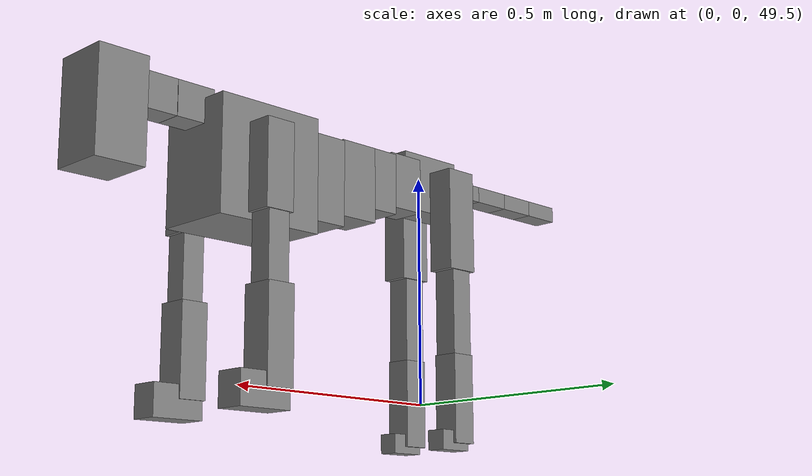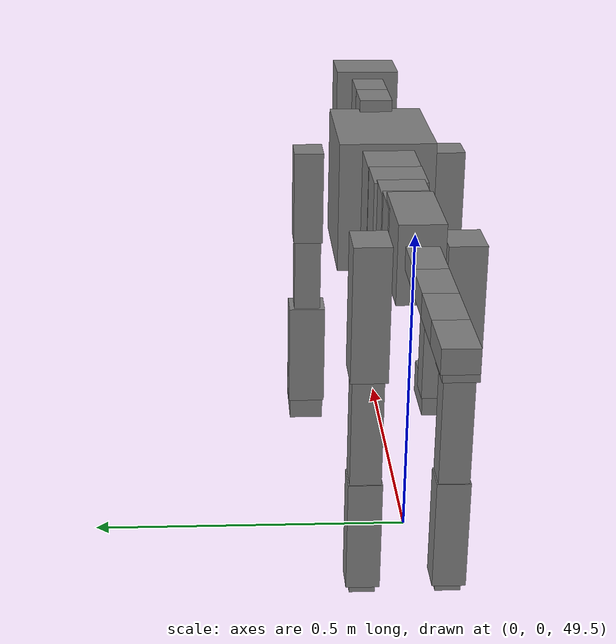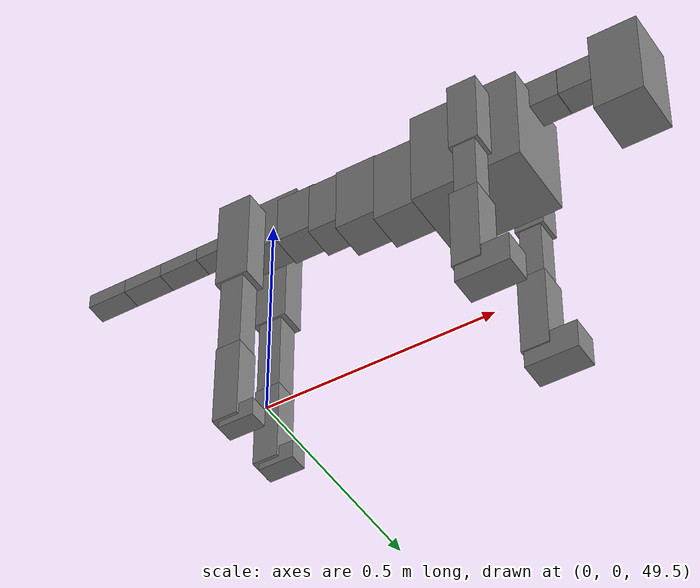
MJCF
<mujoco model="dog">

    <default>
        <joint armature="0.02" stiffness="1" damping="0.2" limited="true"/>
        <geom condim="3" friction="1 0.05 0.05" margin="0.01"/>
        <motor ctrllimited="true" ctrlrange="-1.0 1.0" forcelimited="true" gear="50"/>
    </default>

    <compiler inertiafromgeom="true" angle="radian"/>

    <option timestep="0.016" iterations="50" tolerance="1e-10" solver="Newton" jacobian="dense" cone="pyramidal"/>

    <size nconmax="20000" njmax="60000" nstack="5000000"/>
    <visual>
        <map force="0.1" zfar="30"/>
        <rgba haze="0.15 0.25 0.35 1"/>
        <quality shadowsize="2048"/>
        <global offwidth="800" offheight="800"/>
    </visual>

    <asset>
        <texture type="skybox" builtin="gradient" rgb1="0.3 0.5 0.7" rgb2="0 0 0" width="512" height="512"/>
        <texture name="texplane" type="2d" builtin="checker" rgb1=".2 .3 .4" rgb2=".1 0.15 0.2" width="512" height="512"
                 mark="cross" markrgb=".8 .8 .8"/>
        <texture name="texgeom" type="cube" builtin="flat" mark="cross" width="127" height="1278" rgb1="0.8 0.6 0.4"
                 rgb2="0.8 0.6 0.4" markrgb="1 1 1" random="0.01"/>

        <material name="matplane" reflectance="0.3" texture="texplane" texrepeat="1 1" texuniform="true"/>
        <material name="matgeom" texture="texgeom" texuniform="true" rgba="0.8 0.6 .4 1"/>
    </asset>

    <worldbody>
        <geom name="floor" pos="0 0 0" size="0 0 .25" type="plane" material="matplane" condim="3"/>

        <light directional="false" diffuse=".2 .2 .2" specular="0 0 0" pos="0 0 5" dir="0 0 -1" castshadow="false"/>
        <light mode="targetbodycom" target="torso" directional="false" diffuse=".8 .8 .8" specular="0.3 0.3 0.3"
               pos="0 0 4.0" dir="0 0 -1"/>

        <body name="root" pos="0 0 50">
            <freejoint name="root_1"/>
            <geom type="box" pos="0 0 -0.02" size="0.0774  0.0358  0.063" density="2030"/>

            <body name="spine1" pos="0.054 0 0">
                <joint name="spine1_y" axis="0 1 0" range="0 0.7" limited="true"/>
                <geom type="box" pos="0.02375 0 -0.03" size="0.04375  0.0375  0.05985" density="2030"/>

                <body name="spine2" pos="0.0612 0 0">
                    <joint name="spine2_y" axis="0 1 0" range="-0.15 0.15" limited="true"/>
                    <geom type="box" pos="0.03555  0  -0.04" size="0.04055  0.039  0.06615" density="2030"/>

                    <body name="spine3" pos="0.0730 0 0">
                        <joint name="spine3_y" axis="0 1 0" range="-0.15 0.15" limited="true"/>
                        <geom type="box" pos="0.03555  0  -0.057" size="0.04555  0.0445  0.081" density="2030"/>

                        <body name="spine4" pos="0.0780 0 0">
                            <joint name="spine4_y" axis="0 1 0" range="-0.15 0.15" limited="true"/>
                            <geom type="box" pos="0.05265  0  -0.07" size="0.05265  0.045  0.09135" density="2030"/>

                            <body name="torso" pos="0.1082 0 0">
                                <joint name="torso_y" axis="0 1 0" range="-0.15 0.15" limited="true"/>
                                <geom type="box" pos="0.11925  0  -0.085" size="0.11925  0.085  0.11745"
                                      density="2030"/>

                                <body name="neck1" pos="0.2160  0   0.0180">
                                    <joint name="neck1_y" axis="0 1 0" range="-1.2  -1" limited="true"/>
                                    <geom type="box" pos="0.0423  0  0" size="0.0423  0.03  0.036" density="2325"/>

                                    <body name="neck2" pos="0.0853  0  0">
                                        <joint name="neck2_y" axis="0 1 0" range="0.1  0" limited="true"/>
                                        <geom type="box" pos="0.0423  0  0" size="0.0423  0.03  0.036" density="2325"/>

                                        <body name="head" pos="0.0853  0  0">
                                            <joint name="head_y" axis="0 1 0" range="-0.3  -0.2" limited="true"/>
                                            <geom type="box" pos="0.0531  0  -0.055" size="0.0531  0.06  0.1044"
                                                  density="4030"/>

                                        </body>
                                    </body>
                                </body>

                                <body name="front_shoulder" pos="0.156  0   -0.0480">
                                    <joint name="front_shoulder_y" axis="0 1 0" range="-1 1.5" limited="true"/>
                                    <geom type="box" pos="0 0.13 -0.0601" size="0.0317  0.0271  0.0868" density="1158"/>
                                    <geom type="box" pos="0 -0.13 -0.0601" size="0.0317  0.0271  0.0868"
                                          density="1158"/>

                                    <body name="front_elbow" pos="0  0  -0.1202">
                                        <joint name="front_elbow_y" axis="0 1 0" range="-2 0" limited="true"/>
                                        <geom type="box" pos="0 0.13 -0.0876" size="0.0241  0.0246  0.0876"
                                              density="1081"/>
                                        <geom type="box" pos="0 -0.13 -0.0876" size="0.0241  0.0246  0.0876"
                                              density="1081"/>

                                        <body name="front_wrist" pos="0  0  -0.1751">
                                            <joint name="front_wrist_y" axis="0 1 0" range="-0.2 0" limited="true"/>
                                            <geom type="box" pos="0 0.13 -0.0830" size="0.0303  0.0337  0.0962"
                                                  density="1664"/>
                                            <geom type="box" pos="0 -0.13 -0.0830" size="0.0303  0.0337  0.0962"
                                                  density="1664"/>

                                            <body name="front_finger_end" pos="0  0  -0.1661">
                                                <joint name="front_finger_y" axis="0 1 0" range="-0.4 1"
                                                       limited="true"/>
                                                <geom type="box" pos="0.0312  0.13  -0.0184"
                                                      size="0.0571  0.0312  0.0334" density="1515"/>
                                                <geom type="box" pos="0.0312  -0.13  -0.0184"
                                                      size="0.0571  0.0312  0.0334" density="1515"/>

                                            </body>

                                        </body>
                                    </body>
                                </body>

                            </body>
                        </body>
                    </body>
                </body>
            </body>

            <body name="back_hip" pos="-0.03 0 -0.018">
                <joint name="back_hip_y" axis="0 1 0" range="-1.5 0.3" limited="true"/>
                <geom type="box" pos="0 0.07 -0.0872" size="0.0372  0.0292  0.1100" density="1154"/>
                <geom type="box" pos="0 -0.07 -0.0872" size="0.0372  0.0292  0.1100" density="1154"/>

                <body name="back_knee" pos="0  0  -0.1744">
                    <joint name="back_knee_y" axis="0 1 0" range="0 2.8" limited="true"/>
                    <geom type="box" pos="0 0.07 -0.1079" size="0.0256  0.0252  0.1235" density="1227"/>
                    <geom type="box" pos="0 -0.07 -0.1079" size="0.0256  0.0252  0.1235" density="1227"/>

                    <body name="back_ankle" pos="0  0  -0.2159">
                        <joint name="back_ankle_y" axis="0 1 0" range="-2.2 0" limited="true"/>
                        <geom type="box" pos="0 0.07 -0.0825" size="0.0274  0.0274  0.0938" density="1284"/>
                        <geom type="box" pos="0 -0.07 -0.0825" size="0.0274  0.0274  0.0938" density="1284"/>

                        <body name="back_toe_end" pos="0  0  -0.1650">
                            <joint name="back_toe_y" axis="0 1 0" range="-0.4 1" limited="true"/>
                            <geom type="box" pos="0.0209  0.07  -0.0057" size="0.0383  0.0209  0.0207" density="1515"/>
                            <geom type="box" pos="0.0209  -0.07  -0.0057" size="0.0383  0.0209  0.0207" density="1515"/>

                        </body>
                    </body>
                </body>
            </body>

            <body name="tail1" pos="-0.074 0 -0.006">
                <joint name="tail1_y" axis="0 1 0" range="-0.2 0.2" limited="true"/>
                <geom type="box" pos="-0.0536  0  0" size="0.045  0.025  0.0175" density="1587"/>

                <body name="tail2" pos="-0.09 0 0">
                    <joint name="tail2_y" axis="0 1 0" range="-0.2 0.2" limited="true"/>
                    <geom type="box" pos="-0.0536  0  0" size="0.045  0.025  0.0175" density="1587"/>

                    <body name="tail3" pos="-0.09 0 0">
                        <joint name="tail3_y" axis="0 1 0" range="-0.2 0.2" limited="true"/>
                        <geom type="box" pos="-0.0536  0  0" size="0.045  0.025  0.0175" density="1587"/>

                        <body name="tail4" pos="-0.09 0 0">
                            <joint name="tail4_y" axis="0 1 0" range="-0.2 0.2" limited="true"/>
                            <geom type="box" pos="-0.0536  0  0" size="0.045  0.025  0.0175" density="1587"/>

                        </body>
                    </body>
                </body>
            </body>
        </body>
    </worldbody>

    <actuator>
        <motor joint="spine1_y" forcerange="-150 150     "/>
        <motor joint="spine2_y" forcerange="-150 150     "/>
        <motor joint="spine3_y" forcerange="-150 150     "/>
        <motor joint="spine4_y" forcerange="-150 150     "/>
        <motor joint="torso_y" forcerange="-150 150     "/>
        <motor joint="neck1_y" forcerange="-100 100       "/>
        <motor joint="neck2_y" forcerange="-100 100       "/>
        <motor joint="head_y" forcerange="-150 150       "/>
        <motor joint="front_shoulder_y" forcerange="-114.65 165.83"/>
        <motor joint="front_elbow_y" forcerange="-105.90 173.20"/>
        <motor joint="front_wrist_y" forcerange="-143.56 126.08"/>
        <motor joint="front_finger_y" forcerange="-54.13 72.00"/>
        <motor joint="back_hip_y" forcerange="-336.23 253.13"/>
        <motor joint="back_knee_y" forcerange="-215.85 350.89"/>
        <motor joint="back_angle_y" forcerange="-111.75 226.93"/>
        <motor joint="back_toe_y" forcerange="-32.28 54.73"/>
        <motor joint="tail1_y" forcerange="-50 50     "/>
        <motor joint="tail2_y" forcerange="-50 50     "/>
        <motor joint="tail3_y" forcerange="-50 50     "/>
        <motor joint="tail4_y" forcerange="-50 50     "/>
    </actuator>
</mujoco>
